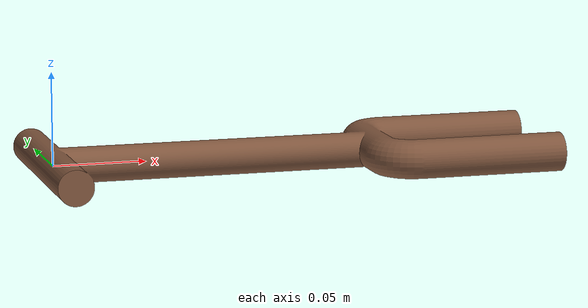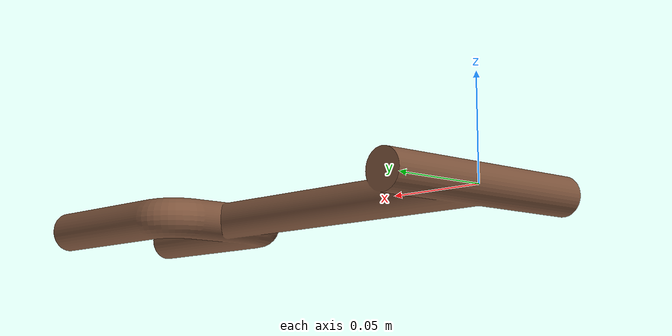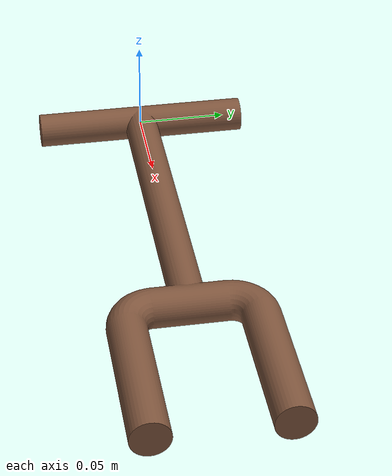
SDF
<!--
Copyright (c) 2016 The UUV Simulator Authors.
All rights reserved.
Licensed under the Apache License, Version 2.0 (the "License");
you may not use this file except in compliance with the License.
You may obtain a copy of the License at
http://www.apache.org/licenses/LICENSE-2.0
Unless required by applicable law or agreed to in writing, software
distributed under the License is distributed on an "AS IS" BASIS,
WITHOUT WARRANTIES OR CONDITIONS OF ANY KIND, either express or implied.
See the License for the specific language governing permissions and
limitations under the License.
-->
<?xml version="1.0" ?>
<sdf version="1.5">
  <model name="t_bar_fork_tool">
    <link name="t_bar_fork_tool">
      <pose>0 0 0 0 0 0</pose>
      <inertial>
        <mass>2</mass>
        <inertia>
          <ixx>0.0024666666666666665</ixx>
          <iyy>0.013133333333333334</iyy>
          <izz>0.015466666666666667</izz>
          <ixy>0</ixy>
          <ixz>0</ixz>
          <iyz>0</iyz>
        </inertia>
        <pose>0.133916 0 0 0 0 0</pose>
      </inertial>

      <collision name="t_bar_fork_tool_collision">
        <geometry>
          <mesh>
            <uri>model://t_bar_fork_tool/meshes/TBarForkTool.dae</uri>
          </mesh>
        </geometry>
      </collision>

      <visual name="t_bar_fork_tool_visual">
        <geometry>
          <mesh>
            <uri>model://t_bar_fork_tool/meshes/TBarForkTool.dae</uri>
          </mesh>
        </geometry>
      </visual>
    </link>
  </model>
</sdf>
